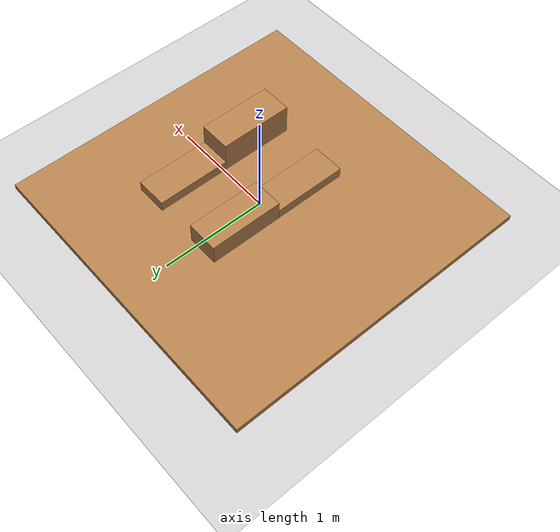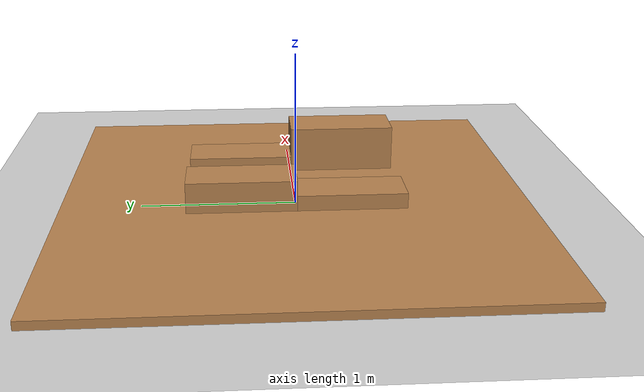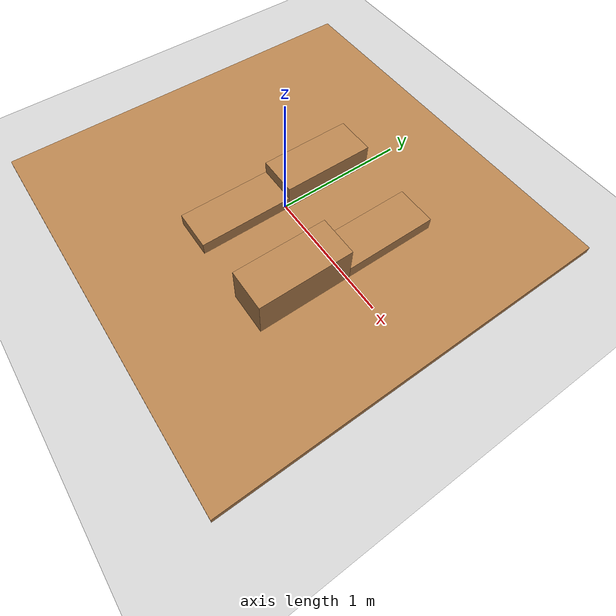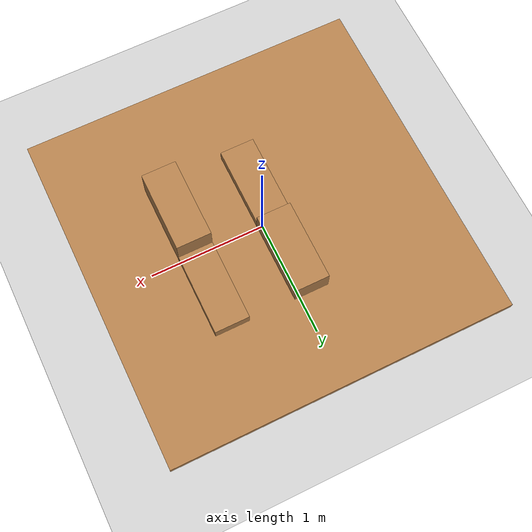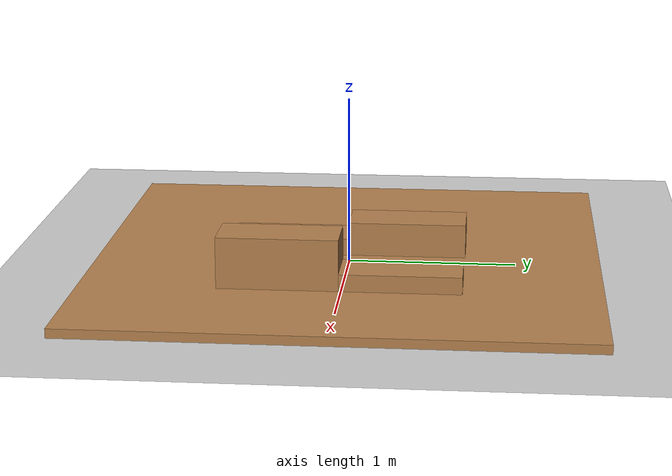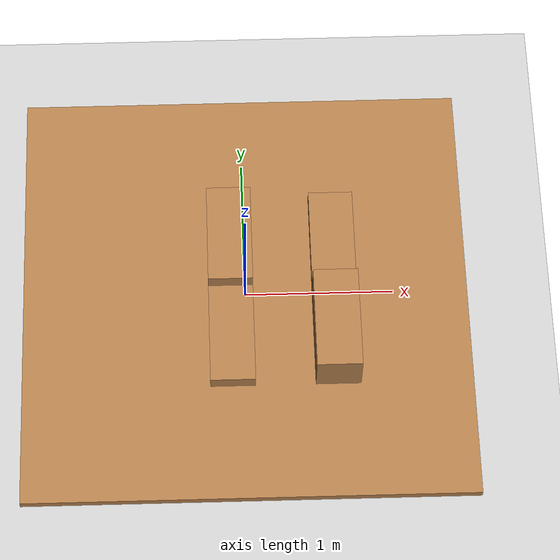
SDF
<?xml version="1.0" ?>
<sdf version="1.4">
  <!-- We use a custom world for the rrbot so that the camera angle is launched correctly -->

  <world name="default">

  <plugin name="xbot2_clock" filename="libxbot2_gz_clock.so"/>

  <gravity>0 0 -9.81</gravity>

  <model name="ground_plane">
    <static>true</static>
    <link name="link">
      <collision name="collision">
        <geometry>
          <plane>
            <normal>0 0 1</normal>
            <size>100 100</size>
          </plane>
        </geometry>
        <surface>
          <friction>
            <ode>
              <mu>1</mu>
              <mu2>1</mu2>
            </ode>
          </friction>
        </surface>
      </collision>
      <visual name="visual">
        <cast_shadows>false</cast_shadows>
        <geometry>
          <plane>
            <normal>0 0 1</normal>
            <size>100 100</size>
          </plane>
        </geometry>
        <material>
          <script>
            <uri>file://media/materials/scripts/gazebo.material</uri>
            <name>Gazebo/Grey</name>
          </script>
        </material>
      </visual>
    </link>
  </model>

  <model name='platform'>
      <static>true</static>
      <pose frame=''>0.0 -0.0 -0.0 0 -0 0</pose>
      <link name='link'>
        <collision name='collision'>
          <geometry>
            <box>
              <size>3.0 3.0 0.1</size>
            </box>
          </geometry>
          <max_contacts>10</max_contacts>
          <surface>
            <contact>
              <ode/>
            </contact>
            <bounce/>
            <friction>
              <torsional>
                <ode/>
              </torsional>
              <ode/>
            </friction>
          </surface>
        </collision>
        <visual name='visual'>
          <geometry>
            <box>
              <size>3.0 3.0 0.1</size>
            </box>
          </geometry>
          <material>
            <script>
              <name>Gazebo/WoodPallet</name>
              <uri>file://media/materials/scripts/gazebo.material</uri>
            </script>
          </material>
        </visual>
        <self_collide>0</self_collide>
        <enable_wind>0</enable_wind>
        <kinematic>1</kinematic>
      </link>
    </model>

  <model name='unit_box'>
      <static>true</static>
      <pose frame=''>0.6 -0.35 0.15 0 -0 0</pose>
      <link name='link'>
        <collision name='collision'>
          <geometry>
            <box>
              <size>0.3 0.7 0.40</size>
            </box>
          </geometry>
          <max_contacts>10</max_contacts>
          <surface>
            <contact>
              <ode/>
            </contact>
            <bounce/>
            <friction>
              <torsional>
                <ode/>
              </torsional>
              <ode/>
            </friction>
          </surface>
        </collision>
        <visual name='visual'>
          <geometry>
            <box>
              <size>0.3 0.7 0.40</size>
            </box>
          </geometry>
          <material>
            <script>
              <name>Gazebo/WoodPallet</name>
              <uri>file://media/materials/scripts/gazebo.material</uri>
            </script>
          </material>
        </visual>
        <self_collide>0</self_collide>
        <enable_wind>0</enable_wind>
        <kinematic>1</kinematic>
      </link>
    </model>

  <model name='unit_box2'>
      <static>true</static>
      <pose frame=''>0.6 0.35 0.05 0 -0 0</pose>
      <link name='link'>
        <collision name='collision'>
          <geometry>
            <box>
              <size>0.3 0.7 0.20</size>
            </box>
          </geometry>
          <max_contacts>10</max_contacts>
          <surface>
            <contact>
              <ode/>
            </contact>
            <bounce/>
            <friction>
              <torsional>
                <ode/>
              </torsional>
              <ode/>
            </friction>
          </surface>
        </collision>
        <visual name='visual'>
          <geometry>
            <box>
              <size>0.3 0.7 0.20</size>
            </box>
          </geometry>
          <material>
            <script>
              <name>Gazebo/WoodPallet</name>
              <uri>file://media/materials/scripts/gazebo.material</uri>
            </script>
          </material>
        </visual>
        <self_collide>0</self_collide>
        <enable_wind>0</enable_wind>
        <kinematic>1</kinematic>
      </link>
    </model>

  <model name='unit_box3'>
      <static>true</static>
      <pose frame=''>-0.1 -0.35 0.05 0 -0 0</pose>
      <link name='link'>
        <collision name='collision'>
          <geometry>
            <box>
              <size>0.3 0.7 0.20</size>
            </box>
          </geometry>
          <max_contacts>10</max_contacts>
          <surface>
            <contact>
              <ode/>
            </contact>
            <bounce/>
            <friction>
              <torsional>
                <ode/>
              </torsional>
              <ode/>
            </friction>
          </surface>
        </collision>
        <visual name='visual'>
          <geometry>
            <box>
              <size>0.3 0.7 0.20</size>
            </box>
          </geometry>
          <material>
            <script>
              <name>Gazebo/WoodPallet</name>
              <uri>file://media/materials/scripts/gazebo.material</uri>
            </script>
          </material>
        </visual>
        <self_collide>0</self_collide>
        <enable_wind>0</enable_wind>
        <kinematic>1</kinematic>
      </link>
    </model>

  <model name='unit_box4'>
      <static>true</static>
      <pose frame=''>-0.1 0.35 0.10 0 -0 0</pose>
      <link name='link'>
        <collision name='collision'>
          <geometry>
            <box>
              <size>0.3 0.7 0.30</size>
            </box>
          </geometry>
          <max_contacts>10</max_contacts>
          <surface>
            <contact>
              <ode/>
            </contact>
            <bounce/>
            <friction>
              <torsional>
                <ode/>
              </torsional>
              <ode/>
            </friction>
          </surface>
        </collision>
        <visual name='visual'>
          <geometry>
            <box>
              <size>0.3 0.7 0.30</size>
            </box>
          </geometry>
          <material>
            <script>
              <name>Gazebo/WoodPallet</name>
              <uri>file://media/materials/scripts/gazebo.material</uri>
            </script>
          </material>
        </visual>
        <self_collide>0</self_collide>
        <enable_wind>0</enable_wind>
        <kinematic>1</kinematic>
      </link>
    </model>

    <!-- Global light source -->
    <include>
      <uri>model://sun</uri>
    </include>

    <!-- Focus camera on tall pendulum -->
    <gui fullscreen='0'>
      <camera name='user_camera'>
        <pose>4.927360 -4.376610 3.740080 0.000000 0.275643 2.356190</pose>
        <view_controller>orbit</view_controller>
      </camera>
    </gui>

    <physics name="update_rate" type="ode">
      <real_time_update_rate>4000</real_time_update_rate>
      <max_step_size>0.00025</max_step_size>
      <max_contacts>6</max_contacts>
      <bullet>
      	<solver>
              <iters>100</iters>
              <sor>1.55</sor>
        </solver>
        <constraints>
              <contact_surface_layer>0.002</contact_surface_layer>
              <cfm>0.00005</cfm>
              <erp>0.2</erp>
         </constraints>
       </bullet>

       <ode>
         <solver>
          	<iters>50</iters>
          	<sor>1.20</sor>
         </solver>
         <constraints>
          	<contact_surface_layer>0.0002</contact_surface_layer>
          	<contact_max_correcting_vel>500</contact_max_correcting_vel>
          	<cfm>0.000001</cfm>
          	<erp>0.3</erp>
         </constraints>
       </ode>
    </physics>

  </world>
</sdf>
